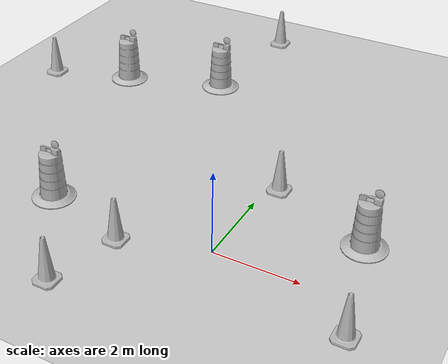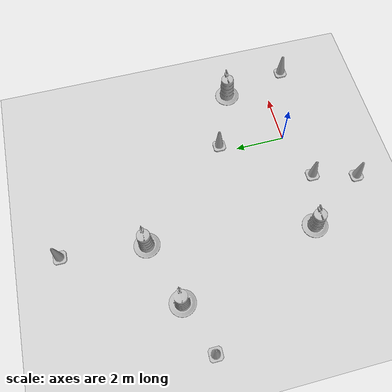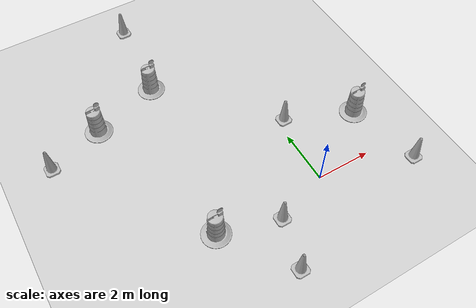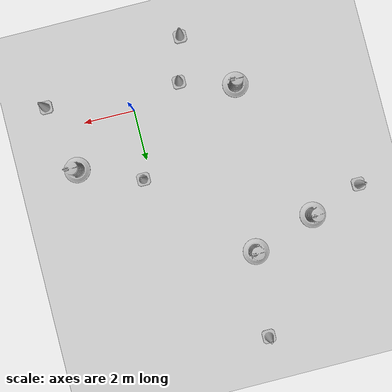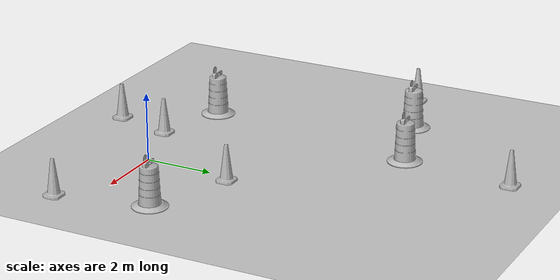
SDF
<sdf version="1.7">
 <world name="default">
  <light name="sun" type="directional">
   <pose>0 0 10 0 -0 0</pose>
   <diffuse>0.8 0.8 0.8 1</diffuse>
   <specular>0.2 0.2 0.2 1</specular>
   <attenuation>
    <range>1000</range>
    <constant>0.9</constant>
    <linear>0.01</linear>
    <quadratic>0.001</quadratic>
   </attenuation>
   <direction>-0.5 0.1 -0.9</direction>
   <spot><inner_angle>0</inner_angle><outer_angle>0</outer_angle><falloff>0</falloff></spot>
  </light>
  <model name="ground_plane">
   <static>1</static>
   <link name="link">
    <collision name="collision">
     <geometry><plane><normal>0 0 1</normal><size>100 100</size></plane></geometry>
     <surface>
      <contact><collide_bitmask>65535</collide_bitmask></contact>
      <friction><ode><mu>100</mu><mu2>50</mu2></ode></friction>
     </surface>
    </collision>
    <visual name="visual">
     <cast_shadows>0</cast_shadows>
     <geometry><plane><normal>0 0 1</normal><size>100 100</size></plane></geometry>
     <material>
      <script><uri>file://media/materials/scripts/gazebo.material</uri><name>Gazebo/Grey</name></script>
     </material>
    </visual>
   </link>
  </model>
  <gravity>0 0 -9.8</gravity>
  <magnetic_field>6e-06 2.3e-05 -4.2e-05</magnetic_field>
  <atmosphere type="adiabatic"/>
  <physics type="ode">
   <max_step_size>0.001</max_step_size>
   <real_time_factor>1</real_time_factor>
   <real_time_update_rate>1000</real_time_update_rate>
  </physics>
  <scene><ambient>0.4 0.4 0.4 1</ambient><background>0.7 0.7 0.7 1</background><shadows>1</shadows></scene>
  <spherical_coordinates>
   <surface_model>EARTH_WGS84</surface_model>
   <latitude_deg>0</latitude_deg>
   <longitude_deg>0</longitude_deg>
   <elevation>0</elevation>
   <heading_deg>0</heading_deg>
  </spherical_coordinates>
  <model name="Construction Barrel_0">
   <link name="link">
    <inertial>
     <pose>0 0 0.4 0 -0 0</pose>
     <mass>500</mass>
     <inertia><ixx>51.2096</ixx><iyy>51.2096</iyy><izz>25</izz><ixy>0</ixy><ixz>0</ixz><iyz>0</iyz></inertia>
    </inertial>
    <collision name="collision">
     <geometry><mesh><uri>model://construction_barrel/meshes/construction_barrel.dae</uri></mesh></geometry>
    </collision>
    <visual name="visual">
     <geometry><mesh><uri>model://construction_barrel/meshes/construction_barrel.dae</uri></mesh></geometry>
    </visual>
   </link>
   <pose>-4.09198 -0.017246 -2e-06 -7e-06 4e-06 -2.5e-05</pose>
  </model>
  <model name="Construction Barrel_1">
   <link name="link">
    <inertial>
     <pose>0 0 0.4 0 -0 0</pose>
     <mass>500</mass>
     <inertia><ixx>51.2096</ixx><iyy>51.2096</iyy><izz>25</izz><ixy>0</ixy><ixz>0</ixz><iyz>0</iyz></inertia>
    </inertial>
    <collision name="collision">
     <geometry><mesh><uri>model://construction_barrel/meshes/construction_barrel.dae</uri></mesh></geometry>
    </collision>
    <visual name="visual">
     <geometry><mesh><uri>model://construction_barrel/meshes/construction_barrel.dae</uri></mesh></geometry>
    </visual>
   </link>
   <pose>-3.25248 6.49834 -5e-06 -1.2e-05 -3e-06 -2.4e-05</pose>
  </model>
  <model name="Construction Barrel_2">
   <link name="link">
    <inertial>
     <pose>0 0 0.4 0 -0 0</pose>
     <mass>500</mass>
     <inertia><ixx>51.2096</ixx><iyy>51.2096</iyy><izz>25</izz><ixy>0</ixy><ixz>0</ixz><iyz>0</iyz></inertia>
    </inertial>
    <collision name="collision">
     <geometry><mesh><uri>model://construction_barrel/meshes/construction_barrel.dae</uri></mesh></geometry>
    </collision>
    <visual name="visual">
     <geometry><mesh><uri>model://construction_barrel/meshes/construction_barrel.dae</uri></mesh></geometry>
    </visual>
   </link>
   <pose>2.71383 1.70974 1e-06 3e-06 2e-06 -1.7e-05</pose>
  </model>
  <model name="Construction Cone">
   <link name="link">
    <collision name="collision">
     <geometry>
      <mesh><scale>10 10 10</scale><uri>model://construction_cone/meshes/construction_cone.dae</uri></mesh>
     </geometry>
    </collision>
    <visual name="visual">
     <geometry>
      <mesh><scale>10 10 10</scale><uri>model://construction_cone/meshes/construction_cone.dae</uri></mesh>
     </geometry>
    </visual>
    <inertial>
     <inertia><ixx>1</ixx><ixy>0</ixy><ixz>0</ixz><iyy>1</iyy><iyz>0</iyz><izz>1</izz></inertia>
     <mass>1</mass>
    </inertial>
   </link>
   <pose>-1.97281 -0.64831 -4e-06 -3e-06 -1e-06 -0</pose>
  </model>
  <model name="Construction Cone_0">
   <link name="link">
    <collision name="collision">
     <geometry>
      <mesh><scale>10 10 10</scale><uri>model://construction_cone/meshes/construction_cone.dae</uri></mesh>
     </geometry>
    </collision>
    <visual name="visual">
     <geometry>
      <mesh><scale>10 10 10</scale><uri>model://construction_cone/meshes/construction_cone.dae</uri></mesh>
     </geometry>
    </visual>
    <inertial>
     <inertia><ixx>1</ixx><ixy>0</ixy><ixz>0</ixz><iyy>1</iyy><iyz>0</iyz><izz>1</izz></inertia>
     <mass>1</mass>
    </inertial>
   </link>
   <pose>-2.45236 -2.38533 -0 0 -0 0</pose>
  </model>
  <model name="Construction Cone_1">
   <link name="link">
    <collision name="collision">
     <geometry>
      <mesh><scale>10 10 10</scale><uri>model://construction_cone/meshes/construction_cone.dae</uri></mesh>
     </geometry>
    </collision>
    <visual name="visual">
     <geometry>
      <mesh><scale>10 10 10</scale><uri>model://construction_cone/meshes/construction_cone.dae</uri></mesh>
     </geometry>
    </visual>
    <inertial>
     <inertia><ixx>1</ixx><ixy>0</ixy><ixz>0</ixz><iyy>1</iyy><iyz>0</iyz><izz>1</izz></inertia>
     <mass>1</mass>
    </inertial>
   </link>
   <pose>-7.76589 4.94182 -0 0 -1e-06 0</pose>
  </model>
  <model name="Construction Cone_2">
   <link name="link">
    <collision name="collision">
     <geometry>
      <mesh><scale>10 10 10</scale><uri>model://construction_cone/meshes/construction_cone.dae</uri></mesh>
     </geometry>
    </collision>
    <visual name="visual">
     <geometry>
      <mesh><scale>10 10 10</scale><uri>model://construction_cone/meshes/construction_cone.dae</uri></mesh>
     </geometry>
    </visual>
    <inertial>
     <inertia><ixx>1</ixx><ixy>0</ixy><ixz>0</ixz><iyy>1</iyy><iyz>0</iyz><izz>1</izz></inertia>
     <mass>1</mass>
    </inertial>
   </link>
   <pose>0.295734 2.69968 -0 0 -1e-06 0</pose>
  </model>
  <model name="Construction Barrel_3">
   <link name="link">
    <inertial>
     <pose>0 0 0.4 0 -0 0</pose>
     <mass>500</mass>
     <inertia><ixx>51.2096</ixx><iyy>51.2096</iyy><izz>25</izz><ixy>0</ixy><ixz>0</ixz><iyz>0</iyz></inertia>
    </inertial>
    <collision name="collision">
     <geometry><mesh><uri>model://construction_barrel/meshes/construction_barrel.dae</uri></mesh></geometry>
    </collision>
    <visual name="visual">
     <geometry><mesh><uri>model://construction_barrel/meshes/construction_barrel.dae</uri></mesh></geometry>
    </visual>
   </link>
   <pose>-5.7443 5.66309 -1e-06 -8e-06 -2e-06 -1.5e-05</pose>
  </model>
  <model name="Construction Cone_3">
   <link name="link">
    <collision name="collision">
     <geometry>
      <mesh><scale>10 10 10</scale><uri>model://construction_cone/meshes/construction_cone.dae</uri></mesh>
     </geometry>
    </collision>
    <visual name="visual">
     <geometry>
      <mesh><scale>10 10 10</scale><uri>model://construction_cone/meshes/construction_cone.dae</uri></mesh>
     </geometry>
    </visual>
    <inertial>
     <inertia><ixx>1</ixx><ixy>0</ixy><ixz>0</ixz><iyy>1</iyy><iyz>0</iyz><izz>1</izz></inertia>
     <mass>1</mass>
    </inertial>
   </link>
   <pose>-2.92037 9.78719 -0 -0 -0 -0</pose>
  </model>
  <model name="Construction Cone_4">
   <link name="link">
    <collision name="collision">
     <geometry>
      <mesh><scale>10 10 10</scale><uri>model://construction_cone/meshes/construction_cone.dae</uri></mesh>
     </geometry>
    </collision>
    <visual name="visual">
     <geometry>
      <mesh><scale>10 10 10</scale><uri>model://construction_cone/meshes/construction_cone.dae</uri></mesh>
     </geometry>
    </visual>
    <inertial>
     <inertia><ixx>1</ixx><ixy>0</ixy><ixz>0</ixz><iyy>1</iyy><iyz>0</iyz><izz>1</izz></inertia>
     <mass>1</mass>
    </inertial>
   </link>
   <pose>3.3129 -0.960741 -0 0 -1e-06 0</pose>
  </model>
 </world>
</sdf>
